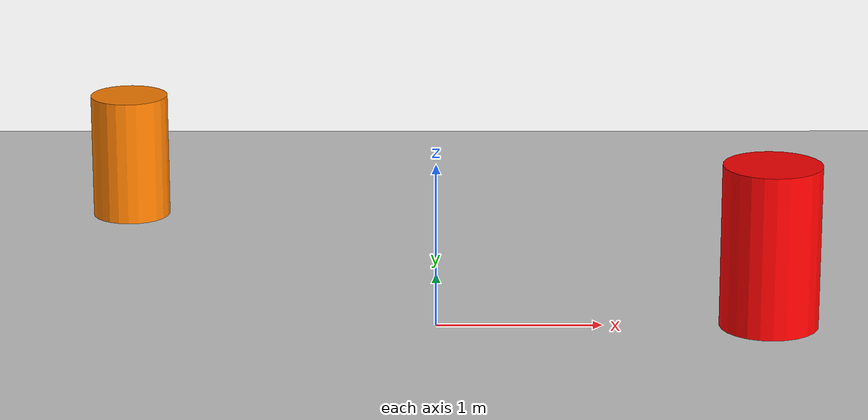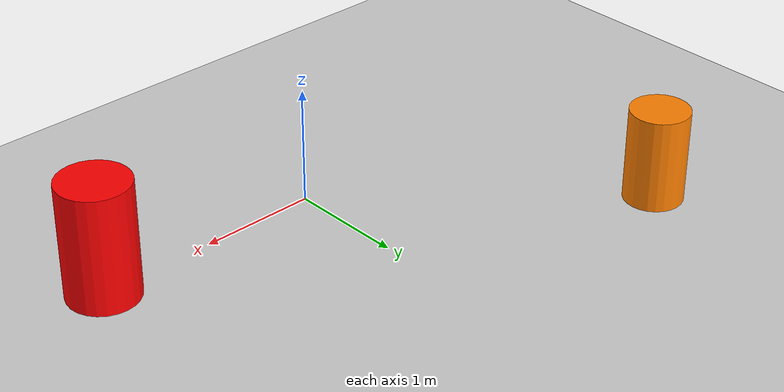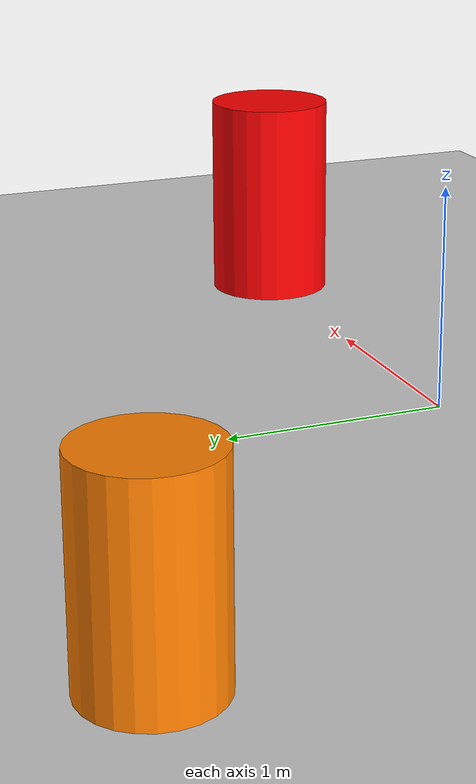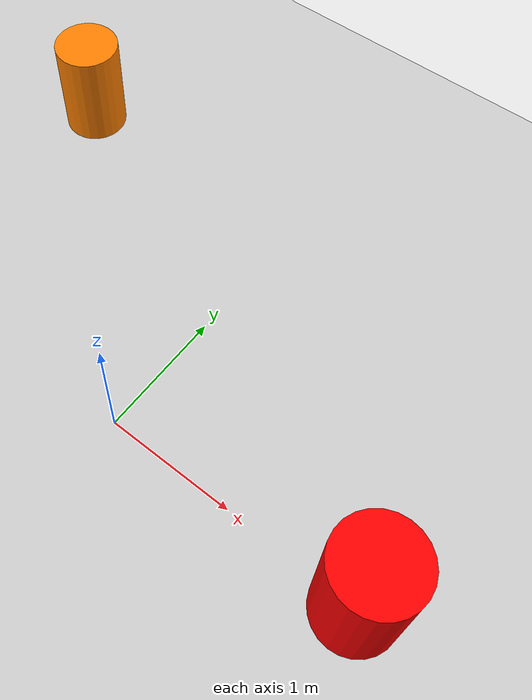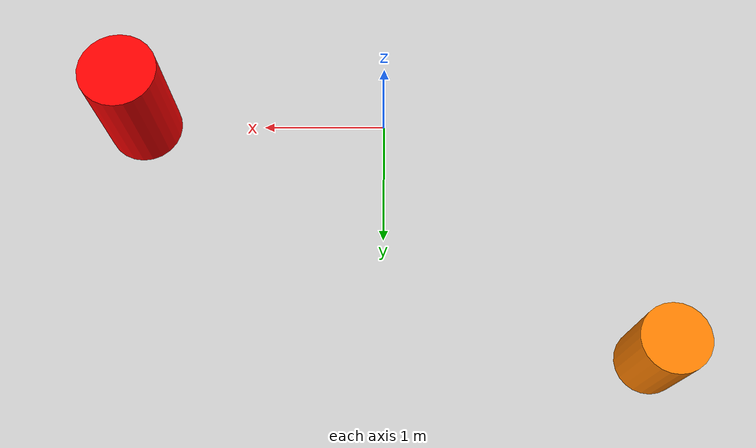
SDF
<?xml version="1.0"?>
<sdf version="1.6">
  <world name="fire_world">

    <!-- Physics -->
    <physics name="default_physics" default="0" type="ode">
      <max_step_size>0.001</max_step_size>
      <real_time_factor>1</real_time_factor>
      <real_time_update_rate>1000</real_time_update_rate>
    </physics>

    <!-- Scene -->
    <scene>
      <ambient>0.4 0.4 0.4 1</ambient>
      <background>0.7 0.7 0.7 1</background>
      <shadows>1</shadows>
    </scene>

    <!-- Sun -->
    <include>
      <uri>model://sun</uri>
    </include>

    <!-- Ground plane -->
    <include>
      <uri>model://ground_plane</uri>
    </include>

    <!-- Fire Model (Simple Red Cylinder) -->
    <model name="fire">
      <pose>2 0 0.5 0 0 0</pose>
      <static>true</static>

      <link name="fire_link">
        <visual name="visual">
          <geometry>
            <cylinder>
              <radius>0.3</radius>
              <length>1.0</length>
            </cylinder>
          </geometry>
          <material>
            <ambient>1 0 0 1</ambient>
            <diffuse>1 0 0 1</diffuse>
            <specular>0.1 0.1 0.1 1</specular>
            <emissive>0.5 0 0 1</emissive>
          </material>
        </visual>

        <collision name="collision">
          <geometry>
            <cylinder>
              <radius>0.3</radius>
              <length>1.0</length>
            </cylinder>
          </geometry>
        </collision>
      </link>
    </model>

    <!-- Additional fire for testing -->
    <model name="fire2">
      <pose>-2 2 0.5 0 0 0</pose>
      <static>true</static>

      <link name="fire_link">
        <visual name="visual">
          <geometry>
            <cylinder>
              <radius>0.25</radius>
              <length>0.8</length>
            </cylinder>
          </geometry>
          <material>
            <ambient>1 0.5 0 1</ambient>
            <diffuse>1 0.5 0 1</diffuse>
            <specular>0.1 0.1 0.1 1</specular>
            <emissive>0.5 0.2 0 1</emissive>
          </material>
        </visual>

        <collision name="collision">
          <geometry>
            <cylinder>
              <radius>0.25</radius>
              <length>0.8</length>
            </cylinder>
          </geometry>
        </collision>
      </link>
    </model>

  </world>
</sdf>
